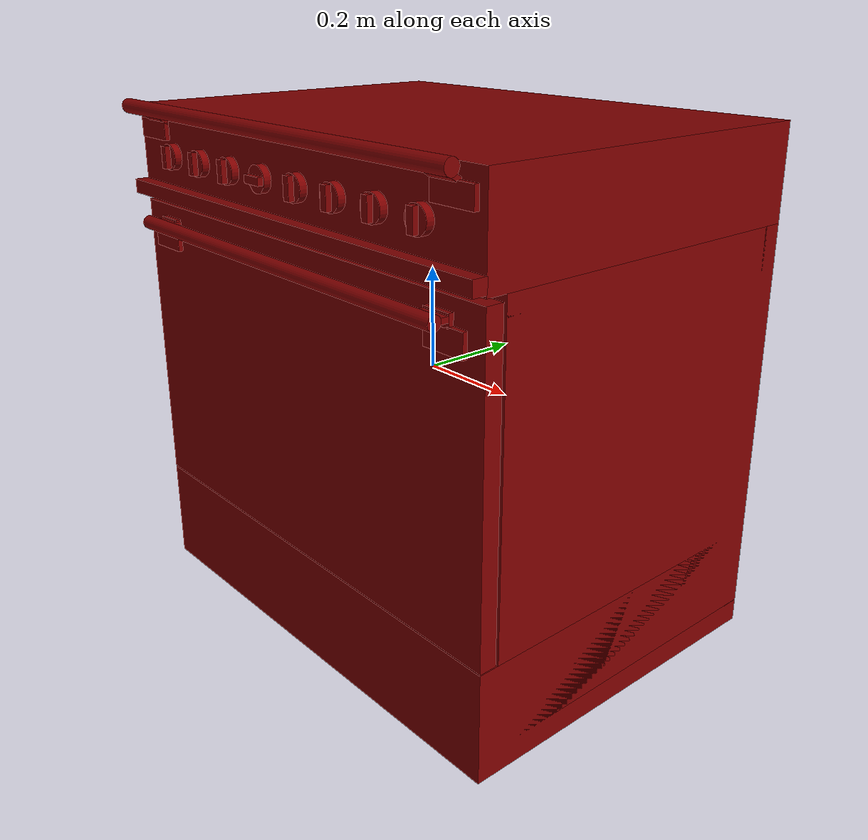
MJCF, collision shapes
<?xml version='1.0' encoding='UTF-8'?>
<mujoco model="model">
  <option timestep="0.002" gravity="0.0 0.0 -9.81"/>
  <compiler angle="radian"/>
  <asset>
    <mesh file="visuals/knob_front_center.obj" name="knob_front_center_vis"/>
    <mesh file="visuals/knob_front_left.obj" name="knob_front_left_vis"/>
    <mesh file="visuals/knob_front_right.obj" name="knob_front_right_vis"/>
    <mesh file="visuals/knob_rear_center.obj" name="knob_rear_center_vis"/>
    <mesh file="visuals/knob_rear_left.obj" name="knob_rear_left_vis"/>
    <mesh file="visuals/knob_rear_right.obj" name="knob_rear_right_vis"/>
    <mesh file="visuals/Body001.obj" name="Body001_vis"/>
    <mesh file="visuals/Door001.obj" name="Door001_vis"/>
    <mesh file="visuals/Door001_Clear.obj" name="Door001_Clear_vis"/>
    <mesh file="visuals/Knob001.obj" name="Knob001_vis"/>
    <mesh file="visuals/Knob002.obj" name="Knob002_vis"/>
    <mesh file="visuals/Shelf001.obj" name="Shelf001_vis"/>
    <texture file="visuals/T_BC001.png" name="Body001_material" type="2d"/>
    <material name="Body001_material" rgba="1 1 1 1.0" texture="Body001_material" shininess="0.141421377658844" specular="2"/>
    <texture file="visuals/T_BC001.png" name="knob_front_center_material" type="2d"/>
    <material name="knob_front_center_material" rgba="1 1 1 1.0" texture="knob_front_center_material" shininess="0.141421377658844" specular="1"/>
    <texture file="visuals/T_BC001.png" name="knob_front_left_material" type="2d"/>
    <material name="knob_front_left_material" rgba="1 1 1 1.0" texture="knob_front_left_material" shininess="0.141421377658844" specular="1"/>
    <texture file="visuals/T_BC001.png" name="knob_front_right_material" type="2d"/>
    <material name="knob_front_right_material" rgba="1 1 1 1.0" texture="knob_front_right_material" shininess="0.141421377658844" specular="1"/>
    <texture file="visuals/T_BC001.png" name="knob_rear_center_material" type="2d"/>
    <material name="knob_rear_center_material" rgba="1 1 1 1.0" texture="knob_rear_center_material" shininess="0.141421377658844" specular="1"/>
    <texture file="visuals/T_BC001.png" name="knob_rear_left_material" type="2d"/>
    <material name="knob_rear_left_material" rgba="1 1 1 1.0" texture="knob_rear_left_material" shininess="0.141421377658844" specular="1"/>
    <texture file="visuals/T_BC001.png" name="knob_rear_right_material" type="2d"/>
    <material name="knob_rear_right_material" rgba="1 1 1 1.0" texture="knob_rear_right_material" shininess="0.141421377658844" specular="1"/>
    <texture file="visuals/T_BC001.png" name="Door001_material" type="2d"/>
    <material name="Door001_material" rgba="1 1 1 1.0" texture="Door001_material" shininess="0.141421377658844" specular="2"/>
    <texture file="visuals/T_BC001.png" name="Door001_Clear_material" type="2d"/>
    <material name="Door001_Clear_material" rgba="1 1 1 0.5" texture="Door001_Clear_material" shininess="0.4472135901451111" specular="0.3103448502657381"/>
    <texture file="visuals/T_BC001.png" name="Knob001_material" type="2d"/>
    <material name="Knob001_material" rgba="1 1 1 1.0" texture="Knob001_material" shininess="0.141421377658844" specular="11"/>
    <texture file="visuals/T_BC001.png" name="Knob002_material" type="2d"/>
    <material name="Knob002_material" rgba="1 1 1 1.0" texture="Knob002_material" shininess="0.141421377658844" specular="1"/>
    <texture file="visuals/T_BC001.png" name="Shelf001_material" type="2d"/>
    <material name="Shelf001_material" rgba="1 1 1 1.0" texture="Shelf001_material" shininess="0.141421377658844" specular="8"/>
  </asset>
  <default>
    <default class="visual">
      <geom conaffinity="0" contype="0" group="1" type="mesh"/>
    </default>
    <default class="collision">
      <geom group="0" rgba="0.5 0 0 0.5"/>
    </default>
    <default class="spawn">
      <geom group="0" rgba="1 1 1 0.5" contype="0" conaffinity="0"/>
      <site group="0" rgba="1 1 1 0.5"/>
    </default>
    <default class="region">
      <geom group="1" conaffinity="0" contype="0" rgba="0 1 0 0"/>
    </default>
  </default>
  <worldbody>
    <body>
      <body name="object">
        <geom mesh="Body001_vis" type="mesh" solimp="0.998 0.998 0.001" solref="0.001 1" friction="0.95 0.3 0.1" class="visual" material="Body001_material"/>
        <geom class="collision" type="box" pos="8.707866072654724e-08 0.025679567828774452 0.40080246329307556" size="0.48968690633773804 0.3529754877090454 0.08887388557195663" quat="1.0 0.0 0.0 0.0" density="1000.0"/>
        <geom class="collision" type="box" pos="-0.46910005807876587 0.04518298804759979 -0.04055200144648552" size="0.020586779341101646 0.3334721326828003 0.41562604904174805" quat="1.0 0.0 0.0 0.0" density="1000.0"/>
        <geom class="collision" type="box" pos="4.289904609322548e-08 0.3594388961791992 -0.06659486889839172" size="0.48968690633773804 0.01921611651778221 0.39059528708457947" quat="1.0 0.0 0.0 0.0" density="1000.0"/>
        <geom class="collision" type="box" pos="0.46921205520629883 0.04518301412463188 -0.04055200144648552" size="0.020474839955568314 0.3334721326828003 0.41562604904174805" quat="1.0 0.0 0.0 0.0" density="1000.0"/>
        <geom class="collision" type="box" pos="2.1245796233415604e-08 0.02567540667951107 -0.3974970281124115" size="0.48968690633773804 0.3529796898365021 0.10404146462678909" quat="1.0 0.0 0.0 0.0" density="1000.0"/>
        <geom class="collision" type="box" pos="2.1245796233415604e-08 0.04575406759977341 -0.2826630473136902" size="0.48968690633773804 0.3329010307788849 0.022169210016727448" quat="1.0 0.0 0.0 0.0" density="1000.0"/>
        <geom class="collision" type="box" pos="-0.000989674823358655 -0.3395751714706421 0.3301699161529541" size="0.4908733069896698 0.013901172205805779 0.013471923768520355" quat="1.0 0.0 0.0 0.0" density="1000.0"/>
        <geom class="collision" type="cylinder" pos="-0.00018086576892528683 -0.36567291617393494 0.4883706569671631" size="0.01378426793962717 0.4624275863170624" quat="0.7071068286895752 -0.0 0.7071067690849304 0.0" density="1000.0"/>
        <geom class="collision" type="box" pos="-0.42847609519958496 -0.3314845860004425 0.44640493392944336" size="0.044898103922605515 0.004866958130151033 0.018567902967333794" quat="1.0 0.0 0.0 0.0" density="1000.0"/>
        <geom class="collision" type="box" pos="-0.4115644097328186 -0.34185197949409485 0.4718289375305176" size="0.02798645757138729 0.004866958130151033 0.02726505510509014" quat="0.8819724321365356 0.47130098938941956 0.0 0.0" density="1000.0"/>
        <geom class="collision" type="box" pos="0.42806917428970337 -0.3314845561981201 0.44640493392944336" size="0.044898103922605515 0.004867016337811947 0.018567917868494987" quat="1.0 0.0 0.0 0.0" density="1000.0"/>
        <geom class="collision" type="box" pos="0.4111575484275818 -0.34185197949409485 0.4718289375305176" size="0.02798646315932274 0.004866958595812321 0.02726505883038044" quat="0.4713008999824524 -0.8819724917411804 -0.0 0.0" density="1000.0"/>
        <geom class="collision" type="box" pos="5.034962669014931e-08 0.04575406759977341 0.29929542541503906" size="0.4896867871284485 0.3329010307788849 0.022169210016727448" quat="1.0 0.0 0.0 0.0" density="1000.0"/>
        <geom class="collision" type="box" pos="0.4427223205566406 0.03863997012376785 -0.03591383993625641" size="0.007096467539668083 0.27380332350730896 0.006235392298549414" quat="1.0 0.0 0.0 0.0" density="1000.0"/>
        <geom class="collision" type="box" pos="-0.44300734996795654 0.03863997012376785 -0.03591383993625641" size="0.007096467539668083 0.27380332350730896 0.006235392298549414" quat="1.0 0.0 0.0 0.0" density="1000.0"/>
        <body name="knob_front_center">
          <joint axis="0.0 -1.0 0.0" pos="-0.15568046271800995 -0.3404916524887085 0.40053418278694153" limited="true" name="knob_front_center_joint" range="0.0 3.490658503988659" type="hinge" damping="0.05" armature="0.001"/>
          <geom mesh="knob_front_center_vis" type="mesh" solimp="0.998 0.998 0.001" solref="0.001 1" friction="0.95 0.3 0.1" class="visual" material="knob_front_center_material"/>
          <geom class="collision" type="cylinder" pos="-0.1556597799062729 -0.33653295040130615 0.4007807672023773" size="0.024497689679265022 0.00717324810102582" quat="0.7071068286895752 0.7071067690849304 0.0 0.0" density="1000.0"/>
          <geom class="collision" type="box" pos="-0.15583287179470062 -0.3486861288547516 0.40135133266448975" size="0.007319525349885225 0.005744123365730047 0.020950069651007652" quat="1.0 0.0 0.0 0.0" density="1000.0" name="knob_front_center_main"/>
        </body>
        <body name="knob_front_left">
          <joint axis="0.0 -1.0 0.0" pos="-0.36038023233413696 -0.3404916524887085 0.40053418278694153" limited="true" name="knob_front_left_joint" range="0.0 3.490658503988659" type="hinge" damping="0.05" armature="0.001"/>
          <geom mesh="knob_front_left_vis" type="mesh" solimp="0.998 0.998 0.001" solref="0.001 1" friction="0.95 0.3 0.1" class="visual" material="knob_front_left_material"/>
          <geom class="collision" type="cylinder" pos="-0.3605394959449768 -0.33653295040130615 0.4007807672023773" size="0.024497689679265022 0.00717324810102582" quat="0.7071068286895752 0.7071067690849304 0.0 0.0" density="1000.0"/>
          <geom class="collision" type="box" pos="-0.36071258783340454 -0.3486861288547516 0.40135133266448975" size="0.007319525349885225 0.005744123365730047 0.020950069651007652" quat="1.0 0.0 0.0 0.0" density="1000.0" name="knob_front_left_main"/>
        </body>
        <body name="knob_front_right">
          <joint axis="0.0 -1.0 0.0" pos="0.36166200041770935 -0.3404916524887085 0.40053418278694153" limited="true" name="knob_front_right_joint" range="0.0 3.490658503988659" type="hinge" damping="0.05" armature="0.001"/>
          <geom mesh="knob_front_right_vis" type="mesh" solimp="0.998 0.998 0.001" solref="0.001 1" friction="0.95 0.3 0.1" class="visual" material="knob_front_right_material"/>
          <geom class="collision" type="cylinder" pos="0.3616826832294464 -0.33653295040130615 0.4007807672023773" size="0.024497689679265022 0.00717324810102582" quat="0.7071068286895752 0.7071067690849304 0.0 0.0" density="1000.0"/>
          <geom class="collision" type="box" pos="0.3615095913410187 -0.3486861288547516 0.40135133266448975" size="0.007319525349885225 0.005744123365730047 0.020950069651007652" quat="1.0 0.0 0.0 0.0" density="1000.0" name="knob_front_right_main"/>
        </body>
        <body name="knob_rear_center">
          <joint axis="0.0 -1.0 0.0" pos="0.15553928911685944 -0.3404916524887085 0.40053418278694153" limited="true" name="knob_rear_center_joint" range="0.0 3.490658503988659" type="hinge" damping="0.05" armature="0.001"/>
          <geom mesh="knob_rear_center_vis" type="mesh" solimp="0.998 0.998 0.001" solref="0.001 1" friction="0.95 0.3 0.1" class="visual" material="knob_rear_center_material"/>
          <geom class="collision" type="cylinder" pos="0.1553800255060196 -0.33653295040130615 0.4007807672023773" size="0.024497689679265022 0.00717324810102582" quat="0.7071068286895752 0.7071067690849304 0.0 0.0" density="1000.0"/>
          <geom class="collision" type="box" pos="0.15520693361759186 -0.3486861288547516 0.40135133266448975" size="0.007319525349885225 0.005744123365730047 0.020950069651007652" quat="1.0 0.0 0.0 0.0" density="1000.0" name="knob_rear_center_main"/>
        </body>
        <body name="knob_rear_left">
          <joint axis="0.0 -1.0 0.0" pos="-0.257969468832016 -0.3404916524887085 0.40053418278694153" limited="true" name="knob_rear_left_joint" range="0.0 3.490658503988659" type="hinge" damping="0.05" armature="0.001"/>
          <geom mesh="knob_rear_left_vis" type="mesh" solimp="0.998 0.998 0.001" solref="0.001 1" friction="0.95 0.3 0.1" class="visual" material="knob_rear_left_material"/>
          <geom class="collision" type="cylinder" pos="-0.2581980526447296 -0.33653295040130615 0.4007807672023773" size="0.024497689679265022 0.00717324810102582" quat="0.7071068286895752 0.7071067690849304 0.0 0.0" density="1000.0"/>
          <geom class="collision" type="box" pos="-0.2583712637424469 -0.3486861288547516 0.40135133266448975" size="0.007319525349885225 0.005744123365730047 0.020950069651007652" quat="1.0 0.0 0.0 0.0" density="1000.0" name="knob_rear_left_main"/>
        </body>
        <body name="knob_rear_right">
          <joint axis="0.0 -1.0 0.0" pos="0.2586829960346222 -0.3404916524887085 0.40053418278694153" limited="true" name="knob_rear_right_joint" range="0.0 3.490658503988659" type="hinge" damping="0.05" armature="0.001"/>
          <geom mesh="knob_rear_right_vis" type="mesh" solimp="0.998 0.998 0.001" solref="0.001 1" friction="0.95 0.3 0.1" class="visual" material="knob_rear_right_material"/>
          <geom class="collision" type="cylinder" pos="0.2584543526172638 -0.33653295040130615 0.4007807672023773" size="0.024497689679265022 0.00717324810102582" quat="0.7071068286895752 0.7071067690849304 0.0 0.0" density="1000.0"/>
          <geom class="collision" type="box" pos="0.2582811415195465 -0.3486861288547516 0.40135133266448975" size="0.007319525349885225 0.005744123365730047 0.020950069651007652" quat="1.0 0.0 0.0 0.0" density="1000.0" name="knob_rear_right_main"/>
        </body>
        <body name="Door001">
          <joint axis="1.0 0.0 0.0" pos="-3.7044286727905273e-05 -0.3275267481803894 -0.2914506793022156" limited="true" name="Door001_joint" range="0.0 1.5707963267948966" type="hinge" damping="1" frictionloss="1" armature=".01" stiffness="0.05"/>
          <geom mesh="Door001_vis" type="mesh" solimp="0.998 0.998 0.001" solref="0.001 1" friction="0.95 0.3 0.1" class="visual" material="Door001_material"/>
          <geom class="collision" type="box" pos="-0.41114962100982666 -0.3314845860004425 0.23677201569080353" size="0.042793016880750656 0.004866958130151033 0.02094981074333191" quat="1.0 0.0 0.0 0.0" density="1000.0"/>
          <geom class="collision" type="cylinder" pos="7.4588562711142e-05 -0.3642154335975647 0.26947227120399475" size="0.012923739850521088 0.4255470931529999" quat="0.7071068286895752 -0.0 0.7071067690849304 0.0" density="1000.0"/>
          <geom class="collision" type="box" pos="-0.39634305238723755 -0.34044942259788513 0.26920992136001587" size="0.02798645570874214 0.014454095624387264 0.004969637840986252" quat="1.0 0.0 0.0 0.0" density="1000.0"/>
          <geom class="collision" type="box" pos="-0.3964073061943054 -0.3314845860004425 0.2665667235851288" size="0.028050655499100685 0.004866958130151033 0.01154108252376318" quat="1.0 0.0 0.0 0.0" density="1000.0"/>
          <geom class="collision" type="box" pos="0.395898699760437 -0.3314845860004425 0.2665667235851288" size="0.028050661087036133 0.00486698979511857 0.011541096493601799" quat="1.0 0.0 0.0 0.0" density="1000.0"/>
          <geom class="collision" type="box" pos="0.410641074180603 -0.3314845860004425 0.23677201569080353" size="0.042793016880750656 0.0048670158721506596 0.020949823781847954" quat="1.0 0.0 0.0 0.0" density="1000.0"/>
          <geom class="collision" type="box" pos="0.3958345055580139 -0.34044942259788513 0.26920992136001587" size="0.02798646129667759 0.014454095624387264 0.0049696387723088264" quat="1.0 0.0 0.0 0.0" density="1000.0"/>
          <geom class="collision" type="box" pos="2.1245796233415604e-08 -0.3107343018054962 0.004928462207317352" size="0.48968684673309326 0.016569973900914192 0.29634958505630493" quat="1.0 0.0 0.0 0.0" density="1000.0"/>
          <body name="Door001_Clear">
            <geom mesh="Door001_Clear_vis" type="mesh" solimp="0.998 0.998 0.001" solref="0.001 1" friction="0.95 0.3 0.1" class="visual" material="Door001_Clear_material"/>
            <geom class="collision" type="box" pos="-0.0005212976248003542 -0.3025902211666107 -0.00945317093282938" size="0.3458075523376465 0.017777936533093452 0.2141008824110031" quat="1.0 0.0 0.0 0.0" density="1000.0"/>
          </body>
        </body>
        <body name="Knob001">
          <joint axis="0.0 1.0 0.0" pos="-0.05304368585348129 -0.3404916524887085 0.40053418278694153" limited="true" name="Knob001_joint" range="0.0 5.235987755982989" type="hinge" damping="0.05" armature="0.001"/>
          <geom mesh="Knob001_vis" type="mesh" solimp="0.998 0.998 0.001" solref="0.001 1" friction="0.95 0.3 0.1" class="visual" material="Knob001_material"/>
          <geom class="collision" type="cylinder" pos="-0.05298878625035286 -0.33653295040130615 0.4007807672023773" size="0.024497689679265022 0.00717324810102582" quat="0.7071068286895752 0.7071067690849304 0.0 0.0" density="1000.0"/>
          <geom class="collision" type="box" pos="-0.05241813138127327 -0.3486861288547516 0.40032362937927246" size="0.020950069651007652 0.005744123365730047 0.0073195272125303745" quat="1.0 0.0 0.0 0.0" density="1000.0"/>
        </body>
        <body name="Knob002">
          <joint axis="0.0 1.0 0.0" pos="0.05280779302120209 -0.3404916524887085 0.40053418278694153" limited="true" name="Knob002_joint" range="0.0 5.585053606381854" type="hinge" damping="0.05" armature="0.001"/>
          <geom mesh="Knob002_vis" type="mesh" solimp="0.998 0.998 0.001" solref="0.001 1" friction="0.95 0.3 0.1" class="visual" material="Knob002_material"/>
          <geom class="collision" type="cylinder" pos="0.05274741351604462 -0.33653295040130615 0.4007807672023773" size="0.024497689679265022 0.00717324810102582" quat="0.7071068286895752 0.7071067690849304 0.0 0.0" density="1000.0"/>
          <geom class="collision" type="box" pos="0.05257432162761688 -0.3486861288547516 0.40135133266448975" size="0.007319525349885225 0.005744123365730047 0.020950069651007652" quat="1.0 0.0 0.0 0.0" density="1000.0"/>
        </body>
        <body name="Shelf001">
          <joint axis="0.0 -1.0 0.0" pos="2.2351741790771484e-05 0.028795897960662842 -0.027248194441199303" limited="true" name="Shelf001_joint" range="0.0 0.5" type="slide" damping="1" frictionloss="1" armature=".01" stiffness="0.05"/>
          <geom mesh="Shelf001_vis" type="mesh" solimp="0.998 0.998 0.001" solref="0.001 1" friction="0.95 0.3 0.1" class="visual" material="Shelf001_material"/>
          <geom class="collision" type="box" pos="8.406657434534281e-05 0.028779150918126106 -0.02213241159915924" size="0.44307735562324524 0.29918843507766724 0.0049240970984101295" quat="1.0 0.0 0.0 0.0" density="1000.0"/>
        </body>
        <geom class="region" name="reg_int" type="box" pos="-0.0014373809099197388 0.029401719570159912 0.00826030969619751" size="0.4477672725915909 0.3135918080806732 0.26899978518486023"/>
        <site type="cylinder" rgba="0.5 0 0 0.5" size="0.07980026304721832 0.0001" pos="-0.29871314764022827 -0.14610238373279572 0.4876219630241394" name="burner_on_front_left"/>
        <site type="cylinder" rgba="0.5 0 0 0.5" size="0.11185963451862335 0.0001" pos="-0.29944002628326416 0.2291884422302246 0.4876219630241394" name="burner_on_rear_left"/>
        <site type="cylinder" rgba="0.5 0 0 0.5" size="0.10009003430604935 0.0001" pos="0.30118829011917114 -0.14568454027175903 0.4876219630241394" name="burner_on_front_right"/>
        <site type="cylinder" rgba="0.5 0 0 0.5" size="0.08943624794483185 0.0001" pos="0.3021553158760071 0.23283635079860687 0.4876219630241394" name="burner_on_rear_right"/>
        <site type="cylinder" rgba="0.5 0 0 0.5" size="0.09131314605474472 0.0001" pos="-0.0025390535593032837 -0.14842326939105988 0.4876219630241394" name="burner_on_front_center"/>
        <site type="cylinder" rgba="0.5 0 0 0.5" size="0.10114502161741257 0.0001" pos="0.012500332668423653 0.23023506999015808 0.4876219630241394" name="burner_on_rear_center"/>
        <site name="burner_front_left_place_site" type="cylinder" rgba="0.5 0 0 0" size="0.07980026304721832 4.999999873689376e-05" pos="-0.29871314764022827 -0.14610238373279572 0.4876219630241394"/>
        <site name="burner_rear_left_place_site" type="cylinder" rgba="0.5 0 0 0" size="0.11185963451862335 4.999999873689376e-05" pos="-0.29944002628326416 0.2291884422302246 0.4876219630241394"/>
        <site name="burner_front_right_place_site" type="cylinder" rgba="0.5 0 0 0" size="0.10009003430604935 4.999999873689376e-05" pos="0.30118829011917114 -0.14568454027175903 0.4876219630241394"/>
        <site name="burner_rear_right_place_site" type="cylinder" rgba="0.5 0 0 0" size="0.08943624794483185 4.999999873689376e-05" pos="0.3021553158760071 0.23283635079860687 0.4876219630241394"/>
        <site name="burner_front_center_place_site" type="cylinder" rgba="0.5 0 0 0" size="0.09131314605474472 4.999999873689376e-05" pos="-0.0025390535593032837 -0.14842326939105988 0.4876219630241394"/>
        <site name="burner_rear_center_place_site" type="cylinder" rgba="0.5 0 0 0" size="0.10114502161741257 4.999999873689376e-05" pos="0.012500332668423653 0.23023506999015808 0.4876219630241394"/>
        <geom class="region" name="reg_main" type="box" pos="-7.450580596923828e-09 0.025675371289253235 -0.005931079387664795" size="0.4896867871284485 0.3529796600341797 0.4956074357032776"/>
      </body>
    </body>
  </worldbody>
  <actuator>
    <motor name="knob_front_center_joint_actuator" joint="knob_front_center_joint" gear="10"/>
    <motor name="knob_front_left_joint_actuator" joint="knob_front_left_joint" gear="10"/>
    <motor name="knob_front_right_joint_actuator" joint="knob_front_right_joint" gear="10"/>
    <motor name="knob_rear_center_joint_actuator" joint="knob_rear_center_joint" gear="10"/>
    <motor name="knob_rear_left_joint_actuator" joint="knob_rear_left_joint" gear="10"/>
    <motor name="knob_rear_right_joint_actuator" joint="knob_rear_right_joint" gear="10"/>
    <motor name="Door001_joint_actuator" joint="Door001_joint" gear="50"/>
    <motor name="Knob001_joint_actuator" joint="Knob001_joint" gear="50"/>
    <motor name="Knob002_joint_actuator" joint="Knob002_joint" gear="50"/>
    <motor name="Shelf001_joint_actuator" joint="Shelf001_joint" gear="50"/>
  </actuator>
</mujoco>
